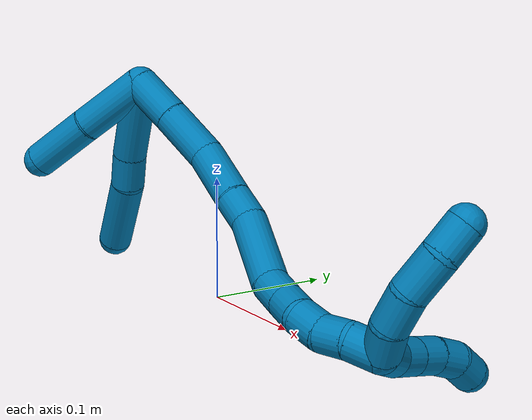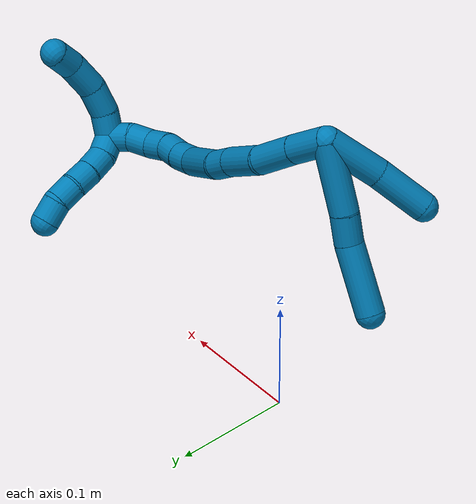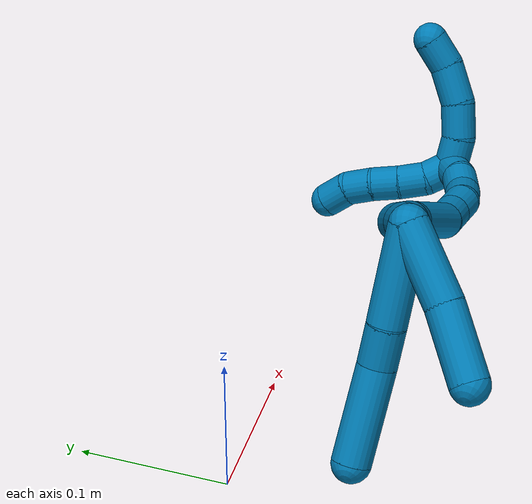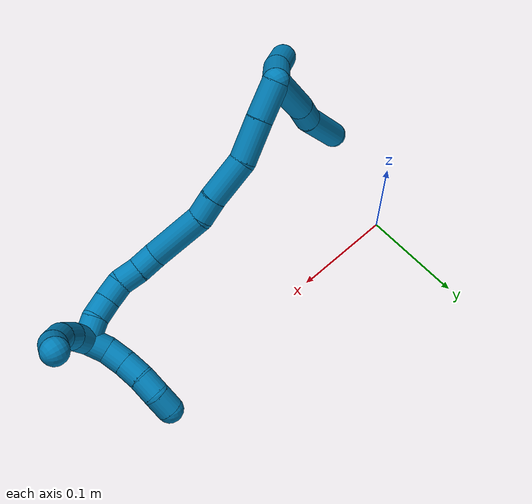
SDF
<sdf version="1.7">
 <world name="default">
  <model name="9">
   <static>0</static>
   <link name="9">
    <collision name="collision-cylinder-e_1_2_8">
     <pose>0.007631 0.022655 -0.019933 -2.29237 0.247701 -0.537372</pose>
     <geometry><cylinder><radius>0.0125</radius><length>0.062251</length></cylinder></geometry>
     <surface>
      <friction><ode><mu>1.16</mu><mu2>1.16</mu2><slip1>0</slip1><slip2>0</slip2></ode></friction>
      <contact><ode><kp>1e+06</kp><kd>1</kd><max_vel>0</max_vel><min_depth>0.001</min_depth></ode></contact>
     </surface>
    </collision>
    <visual name="visual-cylinder-e_1_2_8">
     <pose>0.007631 0.022655 -0.019933 -2.29237 0.247701 -0.537372</pose>
     <geometry><cylinder><radius>0.0125</radius><length>0.062251</length></cylinder></geometry>
     <material><ambient>0 0.490196 0.709804 1</ambient></material>
    </visual>
    <collision name="collision-cylinder-e_2_8_9">
     <pose>0.018427 0.055767 -0.047268 -2.18676 0.242155 -0.461988</pose>
     <geometry><cylinder><radius>0.0125</radius><length>0.026395</length></cylinder></geometry>
     <surface>
      <friction><ode><mu>1.16</mu><mu2>1.16</mu2><slip1>0</slip1><slip2>0</slip2></ode></friction>
      <contact><ode><kp>1e+06</kp><kd>1</kd><max_vel>0</max_vel><min_depth>0.001</min_depth></ode></contact>
     </surface>
    </collision>
    <visual name="visual-cylinder-e_2_8_9">
     <pose>0.018427 0.055767 -0.047268 -2.18676 0.242155 -0.461988</pose>
     <geometry><cylinder><radius>0.0125</radius><length>0.026395</length></cylinder></geometry>
     <material><ambient>0 0.490196 0.709804 1</ambient></material>
    </visual>
    <collision name="collision-cylinder-e_3_9_6">
     <pose>0.027656 0.086286 -0.077072 -2.41126 0.199005 -0.510847</pose>
     <geometry><cylinder><radius>0.0125</radius><length>0.061354</length></cylinder></geometry>
     <surface>
      <friction><ode><mu>1.16</mu><mu2>1.16</mu2><slip1>0</slip1><slip2>0</slip2></ode></friction>
      <contact><ode><kp>1e+06</kp><kd>1</kd><max_vel>0</max_vel><min_depth>0.001</min_depth></ode></contact>
     </surface>
    </collision>
    <visual name="visual-cylinder-e_3_9_6">
     <pose>0.027656 0.086286 -0.077072 -2.41126 0.199005 -0.510847</pose>
     <geometry><cylinder><radius>0.0125</radius><length>0.061354</length></cylinder></geometry>
     <material><ambient>0 0.490196 0.709804 1</ambient></material>
    </visual>
    <collision name="collision-cylinder-e_1_2_10">
     <pose>0.018828 0.005016 -0.017168 -2.85736 0.811062 -2.49821</pose>
     <geometry><cylinder><radius>0.0125</radius><length>0.051938</length></cylinder></geometry>
     <surface>
      <friction><ode><mu>1.16</mu><mu2>1.16</mu2><slip1>0</slip1><slip2>0</slip2></ode></friction>
      <contact><ode><kp>1e+06</kp><kd>1</kd><max_vel>0</max_vel><min_depth>0.001</min_depth></ode></contact>
     </surface>
    </collision>
    <visual name="visual-cylinder-e_1_2_10">
     <pose>0.018828 0.005016 -0.017168 -2.85736 0.811062 -2.49821</pose>
     <geometry><cylinder><radius>0.0125</radius><length>0.051938</length></cylinder></geometry>
     <material><ambient>0 0.490196 0.709804 1</ambient></material>
    </visual>
    <collision name="collision-cylinder-e_2_10_5">
     <pose>0.052967 0.014989 -0.052182 -2.87061 0.690772 -2.41724</pose>
     <geometry><cylinder><radius>0.0125</radius><length>0.048062</length></cylinder></geometry>
     <surface>
      <friction><ode><mu>1.16</mu><mu2>1.16</mu2><slip1>0</slip1><slip2>0</slip2></ode></friction>
      <contact><ode><kp>1e+06</kp><kd>1</kd><max_vel>0</max_vel><min_depth>0.001</min_depth></ode></contact>
     </surface>
    </collision>
    <visual name="visual-cylinder-e_2_10_5">
     <pose>0.052967 0.014989 -0.052182 -2.87061 0.690772 -2.41724</pose>
     <geometry><cylinder><radius>0.0125</radius><length>0.048062</length></cylinder></geometry>
     <material><ambient>0 0.490196 0.709804 1</ambient></material>
    </visual>
    <collision name="collision-cylinder-e_1_2_11">
     <pose>0.000357 0.014367 0.011093 -0.913296 0.019659 -0.009658</pose>
     <geometry><cylinder><radius>0.0125</radius><length>0.036308</length></cylinder></geometry>
     <surface>
      <friction><ode><mu>1.16</mu><mu2>1.16</mu2><slip1>0</slip1><slip2>0</slip2></ode></friction>
      <contact><ode><kp>1e+06</kp><kd>1</kd><max_vel>0</max_vel><min_depth>0.001</min_depth></ode></contact>
     </surface>
    </collision>
    <visual name="visual-cylinder-e_1_2_11">
     <pose>0.000357 0.014367 0.011093 -0.913296 0.019659 -0.009658</pose>
     <geometry><cylinder><radius>0.0125</radius><length>0.036308</length></cylinder></geometry>
     <material><ambient>0 0.490196 0.709804 1</ambient></material>
    </visual>
    <collision name="collision-cylinder-e_2_11_12">
     <pose>0.001107 0.045063 0.033897 -0.948614 0.01957 -0.010047</pose>
     <geometry><cylinder><radius>0.0125</radius><length>0.0402</length></cylinder></geometry>
     <surface>
      <friction><ode><mu>1.16</mu><mu2>1.16</mu2><slip1>0</slip1><slip2>0</slip2></ode></friction>
      <contact><ode><kp>1e+06</kp><kd>1</kd><max_vel>0</max_vel><min_depth>0.001</min_depth></ode></contact>
     </surface>
    </collision>
    <visual name="visual-cylinder-e_2_11_12">
     <pose>0.001107 0.045063 0.033897 -0.948614 0.01957 -0.010047</pose>
     <geometry><cylinder><radius>0.0125</radius><length>0.0402</length></cylinder></geometry>
     <material><ambient>0 0.490196 0.709804 1</ambient></material>
    </visual>
    <collision name="collision-cylinder-e_3_12_13">
     <pose>0.007036 0.07604 0.06018 -0.78799 0.261804 -0.109357</pose>
     <geometry><cylinder><radius>0.0125</radius><length>0.042778</length></cylinder></geometry>
     <surface>
      <friction><ode><mu>1.16</mu><mu2>1.16</mu2><slip1>0</slip1><slip2>0</slip2></ode></friction>
      <contact><ode><kp>1e+06</kp><kd>1</kd><max_vel>0</max_vel><min_depth>0.001</min_depth></ode></contact>
     </surface>
    </collision>
    <visual name="visual-cylinder-e_3_12_13">
     <pose>0.007036 0.07604 0.06018 -0.78799 0.261804 -0.109357</pose>
     <geometry><cylinder><radius>0.0125</radius><length>0.042778</length></cylinder></geometry>
     <material><ambient>0 0.490196 0.709804 1</ambient></material>
    </visual>
    <collision name="collision-cylinder-e_4_13_14">
     <pose>0.014802 0.098905 0.081746 -0.86565 0.203729 -0.094389</pose>
     <geometry><cylinder><radius>0.0125</radius><length>0.022041</length></cylinder></geometry>
     <surface>
      <friction><ode><mu>1.16</mu><mu2>1.16</mu2><slip1>0</slip1><slip2>0</slip2></ode></friction>
      <contact><ode><kp>1e+06</kp><kd>1</kd><max_vel>0</max_vel><min_depth>0.001</min_depth></ode></contact>
     </surface>
    </collision>
    <visual name="visual-cylinder-e_4_13_14">
     <pose>0.014802 0.098905 0.081746 -0.86565 0.203729 -0.094389</pose>
     <geometry><cylinder><radius>0.0125</radius><length>0.022041</length></cylinder></geometry>
     <material><ambient>0 0.490196 0.709804 1</ambient></material>
    </visual>
    <collision name="collision-cylinder-e_5_14_15">
     <pose>0.02979 0.123677 0.107496 -0.723142 0.471637 -0.181256</pose>
     <geometry><cylinder><radius>0.0125</radius><length>0.056161</length></cylinder></geometry>
     <surface>
      <friction><ode><mu>1.16</mu><mu2>1.16</mu2><slip1>0</slip1><slip2>0</slip2></ode></friction>
      <contact><ode><kp>1e+06</kp><kd>1</kd><max_vel>0</max_vel><min_depth>0.001</min_depth></ode></contact>
     </surface>
    </collision>
    <visual name="visual-cylinder-e_5_14_15">
     <pose>0.02979 0.123677 0.107496 -0.723142 0.471637 -0.181256</pose>
     <geometry><cylinder><radius>0.0125</radius><length>0.056161</length></cylinder></geometry>
     <material><ambient>0 0.490196 0.709804 1</ambient></material>
    </visual>
    <collision name="collision-cylinder-e_6_15_16">
     <pose>0.044889 0.145113 0.135115 -0.50344 0.227274 -0.058685</pose>
     <geometry><cylinder><radius>0.0125</radius><length>0.020776</length></cylinder></geometry>
     <surface>
      <friction><ode><mu>1.16</mu><mu2>1.16</mu2><slip1>0</slip1><slip2>0</slip2></ode></friction>
      <contact><ode><kp>1e+06</kp><kd>1</kd><max_vel>0</max_vel><min_depth>0.001</min_depth></ode></contact>
     </surface>
    </collision>
    <visual name="visual-cylinder-e_6_15_16">
     <pose>0.044889 0.145113 0.135115 -0.50344 0.227274 -0.058685</pose>
     <geometry><cylinder><radius>0.0125</radius><length>0.020776</length></cylinder></geometry>
     <material><ambient>0 0.490196 0.709804 1</ambient></material>
    </visual>
    <collision name="collision-cylinder-e_7_16_17">
     <pose>0.049873 0.153481 0.153149 -0.363183 0.263251 -0.048608</pose>
     <geometry><cylinder><radius>0.0125</radius><length>0.020318</length></cylinder></geometry>
     <surface>
      <friction><ode><mu>1.16</mu><mu2>1.16</mu2><slip1>0</slip1><slip2>0</slip2></ode></friction>
      <contact><ode><kp>1e+06</kp><kd>1</kd><max_vel>0</max_vel><min_depth>0.001</min_depth></ode></contact>
     </surface>
    </collision>
    <visual name="visual-cylinder-e_7_16_17">
     <pose>0.049873 0.153481 0.153149 -0.363183 0.263251 -0.048608</pose>
     <geometry><cylinder><radius>0.0125</radius><length>0.020318</length></cylinder></geometry>
     <material><ambient>0 0.490196 0.709804 1</ambient></material>
    </visual>
    <collision name="collision-cylinder-e_8_17_18">
     <pose>0.052614 0.162498 0.170687 -0.584151 0.009772 -0.002938</pose>
     <geometry><cylinder><radius>0.0125</radius><length>0.020067</length></cylinder></geometry>
     <surface>
      <friction><ode><mu>1.16</mu><mu2>1.16</mu2><slip1>0</slip1><slip2>0</slip2></ode></friction>
      <contact><ode><kp>1e+06</kp><kd>1</kd><max_vel>0</max_vel><min_depth>0.001</min_depth></ode></contact>
     </surface>
    </collision>
    <visual name="visual-cylinder-e_8_17_18">
     <pose>0.052614 0.162498 0.170687 -0.584151 0.009772 -0.002938</pose>
     <geometry><cylinder><radius>0.0125</radius><length>0.020067</length></cylinder></geometry>
     <material><ambient>0 0.490196 0.709804 1</ambient></material>
    </visual>
    <collision name="collision-cylinder-e_9_18_19">
     <pose>0.050234 0.1717 0.188052 -0.387242 -0.249769 0.04922</pose>
     <geometry><cylinder><radius>0.0125</radius><length>0.020052</length></cylinder></geometry>
     <surface>
      <friction><ode><mu>1.16</mu><mu2>1.16</mu2><slip1>0</slip1><slip2>0</slip2></ode></friction>
      <contact><ode><kp>1e+06</kp><kd>1</kd><max_vel>0</max_vel><min_depth>0.001</min_depth></ode></contact>
     </surface>
    </collision>
    <visual name="visual-cylinder-e_9_18_19">
     <pose>0.050234 0.1717 0.188052 -0.387242 -0.249769 0.04922</pose>
     <geometry><cylinder><radius>0.0125</radius><length>0.020052</length></cylinder></geometry>
     <material><ambient>0 0.490196 0.709804 1</ambient></material>
    </visual>
    <collision name="collision-cylinder-e_10_19_1">
     <pose>0.04447 0.181728 0.204934 -0.678539 -0.313633 0.111487</pose>
     <geometry><cylinder><radius>0.0125</radius><length>0.021301</length></cylinder></geometry>
     <surface>
      <friction><ode><mu>1.16</mu><mu2>1.16</mu2><slip1>0</slip1><slip2>0</slip2></ode></friction>
      <contact><ode><kp>1e+06</kp><kd>1</kd><max_vel>0</max_vel><min_depth>0.001</min_depth></ode></contact>
     </surface>
    </collision>
    <visual name="visual-cylinder-e_10_19_1">
     <pose>0.04447 0.181728 0.204934 -0.678539 -0.313633 0.111487</pose>
     <geometry><cylinder><radius>0.0125</radius><length>0.021301</length></cylinder></geometry>
     <material><ambient>0 0.490196 0.709804 1</ambient></material>
    </visual>
    <collision name="collision-cylinder-e_1_1_20">
     <pose>0.038862 0.179526 0.220172 0.861295 -0.202939 -0.093484</pose>
     <geometry><cylinder><radius>0.0125</radius><length>0.02304</length></cylinder></geometry>
     <surface>
      <friction><ode><mu>1.16</mu><mu2>1.16</mu2><slip1>0</slip1><slip2>0</slip2></ode></friction>
      <contact><ode><kp>1e+06</kp><kd>1</kd><max_vel>0</max_vel><min_depth>0.001</min_depth></ode></contact>
     </surface>
    </collision>
    <visual name="visual-cylinder-e_1_1_20">
     <pose>0.038862 0.179526 0.220172 0.861295 -0.202939 -0.093484</pose>
     <geometry><cylinder><radius>0.0125</radius><length>0.02304</length></cylinder></geometry>
     <material><ambient>0 0.490196 0.709804 1</ambient></material>
    </visual>
    <collision name="collision-cylinder-e_2_20_21">
     <pose>0.030621 0.162993 0.235476 0.786577 -0.483937 -0.204088</pose>
     <geometry><cylinder><radius>0.0125</radius><length>0.025444</length></cylinder></geometry>
     <surface>
      <friction><ode><mu>1.16</mu><mu2>1.16</mu2><slip1>0</slip1><slip2>0</slip2></ode></friction>
      <contact><ode><kp>1e+06</kp><kd>1</kd><max_vel>0</max_vel><min_depth>0.001</min_depth></ode></contact>
     </surface>
    </collision>
    <visual name="visual-cylinder-e_2_20_21">
     <pose>0.030621 0.162993 0.235476 0.786577 -0.483937 -0.204088</pose>
     <geometry><cylinder><radius>0.0125</radius><length>0.025444</length></cylinder></geometry>
     <material><ambient>0 0.490196 0.709804 1</ambient></material>
    </visual>
    <collision name="collision-cylinder-e_3_21_22">
     <pose>0.01481 0.148275 0.25151 0.695632 -0.754383 -0.285309</pose>
     <geometry><cylinder><radius>0.0125</radius><length>0.02889</length></cylinder></geometry>
     <surface>
      <friction><ode><mu>1.16</mu><mu2>1.16</mu2><slip1>0</slip1><slip2>0</slip2></ode></friction>
      <contact><ode><kp>1e+06</kp><kd>1</kd><max_vel>0</max_vel><min_depth>0.001</min_depth></ode></contact>
     </surface>
    </collision>
    <visual name="visual-cylinder-e_3_21_22">
     <pose>0.01481 0.148275 0.25151 0.695632 -0.754383 -0.285309</pose>
     <geometry><cylinder><radius>0.0125</radius><length>0.02889</length></cylinder></geometry>
     <material><ambient>0 0.490196 0.709804 1</ambient></material>
    </visual>
    <collision name="collision-cylinder-e_4_22_4">
     <pose>-0.004684 0.136932 0.26342 0.876117 -1.01348 -0.508752</pose>
     <geometry><cylinder><radius>0.0125</radius><length>0.022626</length></cylinder></geometry>
     <surface>
      <friction><ode><mu>1.16</mu><mu2>1.16</mu2><slip1>0</slip1><slip2>0</slip2></ode></friction>
      <contact><ode><kp>1e+06</kp><kd>1</kd><max_vel>0</max_vel><min_depth>0.001</min_depth></ode></contact>
     </surface>
    </collision>
    <visual name="visual-cylinder-e_4_22_4">
     <pose>-0.004684 0.136932 0.26342 0.876117 -1.01348 -0.508752</pose>
     <geometry><cylinder><radius>0.0125</radius><length>0.022626</length></cylinder></geometry>
     <material><ambient>0 0.490196 0.709804 1</ambient></material>
    </visual>
    <collision name="collision-cylinder-e_1_1_23">
     <pose>0.034931 0.193512 0.207212 -2.37278 -0.675516 1.42993</pose>
     <geometry><cylinder><radius>0.0125</radius><length>0.02</length></cylinder></geometry>
     <surface>
      <friction><ode><mu>1.16</mu><mu2>1.16</mu2><slip1>0</slip1><slip2>0</slip2></ode></friction>
      <contact><ode><kp>1e+06</kp><kd>1</kd><max_vel>0</max_vel><min_depth>0.001</min_depth></ode></contact>
     </surface>
    </collision>
    <visual name="visual-cylinder-e_1_1_23">
     <pose>0.034931 0.193512 0.207212 -2.37278 -0.675516 1.42993</pose>
     <geometry><cylinder><radius>0.0125</radius><length>0.02</length></cylinder></geometry>
     <material><ambient>0 0.490196 0.709804 1</ambient></material>
    </visual>
    <collision name="collision-cylinder-e_2_23_24">
     <pose>0.020576 0.203904 0.198491 -2.1306 -0.94455 1.49073</pose>
     <geometry><cylinder><radius>0.0125</radius><length>0.02</length></cylinder></geometry>
     <surface>
      <friction><ode><mu>1.16</mu><mu2>1.16</mu2><slip1>0</slip1><slip2>0</slip2></ode></friction>
      <contact><ode><kp>1e+06</kp><kd>1</kd><max_vel>0</max_vel><min_depth>0.001</min_depth></ode></contact>
     </surface>
    </collision>
    <visual name="visual-cylinder-e_2_23_24">
     <pose>0.020576 0.203904 0.198491 -2.1306 -0.94455 1.49073</pose>
     <geometry><cylinder><radius>0.0125</radius><length>0.02</length></cylinder></geometry>
     <material><ambient>0 0.490196 0.709804 1</ambient></material>
    </visual>
    <collision name="collision-cylinder-e_3_24_25">
     <pose>0.004117 0.213924 0.193226 -1.97359 -0.989315 1.369</pose>
     <geometry><cylinder><radius>0.0125</radius><length>0.02</length></cylinder></geometry>
     <surface>
      <friction><ode><mu>1.16</mu><mu2>1.16</mu2><slip1>0</slip1><slip2>0</slip2></ode></friction>
      <contact><ode><kp>1e+06</kp><kd>1</kd><max_vel>0</max_vel><min_depth>0.001</min_depth></ode></contact>
     </surface>
    </collision>
    <visual name="visual-cylinder-e_3_24_25">
     <pose>0.004117 0.213924 0.193226 -1.97359 -0.989315 1.369</pose>
     <geometry><cylinder><radius>0.0125</radius><length>0.02</length></cylinder></geometry>
     <material><ambient>0 0.490196 0.709804 1</ambient></material>
    </visual>
    <collision name="collision-cylinder-e_4_25_26">
     <pose>-0.011684 0.225433 0.189371 -1.82854 -0.839758 1.05021</pose>
     <geometry><cylinder><radius>0.0125</radius><length>0.02</length></cylinder></geometry>
     <surface>
      <friction><ode><mu>1.16</mu><mu2>1.16</mu2><slip1>0</slip1><slip2>0</slip2></ode></friction>
      <contact><ode><kp>1e+06</kp><kd>1</kd><max_vel>0</max_vel><min_depth>0.001</min_depth></ode></contact>
     </surface>
    </collision>
    <visual name="visual-cylinder-e_4_25_26">
     <pose>-0.011684 0.225433 0.189371 -1.82854 -0.839758 1.05021</pose>
     <geometry><cylinder><radius>0.0125</radius><length>0.02</length></cylinder></geometry>
     <material><ambient>0 0.490196 0.709804 1</ambient></material>
    </visual>
    <collision name="collision-cylinder-e_5_26_3">
     <pose>-0.02391 0.240181 0.184776 -1.90651 -0.498492 0.68828</pose>
     <geometry><cylinder><radius>0.0125</radius><length>0.02</length></cylinder></geometry>
     <surface>
      <friction><ode><mu>1.16</mu><mu2>1.16</mu2><slip1>0</slip1><slip2>0</slip2></ode></friction>
      <contact><ode><kp>1e+06</kp><kd>1</kd><max_vel>0</max_vel><min_depth>0.001</min_depth></ode></contact>
     </surface>
    </collision>
    <visual name="visual-cylinder-e_5_26_3">
     <pose>-0.02391 0.240181 0.184776 -1.90651 -0.498492 0.68828</pose>
     <geometry><cylinder><radius>0.0125</radius><length>0.02</length></cylinder></geometry>
     <material><ambient>0 0.490196 0.709804 1</ambient></material>
    </visual>
    <collision name="collision-sphere-3">
     <pose>-0.028691 0.248474 0.181882 0 -0 0</pose>
     <geometry><sphere><radius>0.0125</radius></sphere></geometry>
     <surface>
      <friction><ode><mu>1.16</mu><mu2>1.16</mu2><slip1>0</slip1><slip2>0</slip2></ode></friction>
      <contact><ode><kp>1e+06</kp><kd>1</kd><max_vel>0</max_vel><min_depth>0.001</min_depth></ode></contact>
     </surface>
    </collision>
    <visual name="visual-sphere-3">
     <pose>-0.028691 0.248474 0.181882 0 -0 0</pose>
     <geometry><sphere><radius>0.0125</radius></sphere></geometry>
     <material><ambient>0 0.490196 0.709804 1</ambient></material>
    </visual>
    <collision name="collision-sphere-26">
     <pose>-0.019129 0.231889 0.187669 0 -0 0</pose>
     <geometry><sphere><radius>0.0125</radius></sphere></geometry>
     <surface>
      <friction><ode><mu>1.16</mu><mu2>1.16</mu2><slip1>0</slip1><slip2>0</slip2></ode></friction>
      <contact><ode><kp>1e+06</kp><kd>1</kd><max_vel>0</max_vel><min_depth>0.001</min_depth></ode></contact>
     </surface>
    </collision>
    <visual name="visual-sphere-26">
     <pose>-0.019129 0.231889 0.187669 0 -0 0</pose>
     <geometry><sphere><radius>0.0125</radius></sphere></geometry>
     <material><ambient>0 0.490196 0.709804 1</ambient></material>
    </visual>
    <collision name="collision-sphere-25">
     <pose>-0.004239 0.218977 0.191073 0 -0 0</pose>
     <geometry><sphere><radius>0.0125</radius></sphere></geometry>
     <surface>
      <friction><ode><mu>1.16</mu><mu2>1.16</mu2><slip1>0</slip1><slip2>0</slip2></ode></friction>
      <contact><ode><kp>1e+06</kp><kd>1</kd><max_vel>0</max_vel><min_depth>0.001</min_depth></ode></contact>
     </surface>
    </collision>
    <visual name="visual-sphere-25">
     <pose>-0.004239 0.218977 0.191073 0 -0 0</pose>
     <geometry><sphere><radius>0.0125</radius></sphere></geometry>
     <material><ambient>0 0.490196 0.709804 1</ambient></material>
    </visual>
    <collision name="collision-sphere-24">
     <pose>0.012474 0.208871 0.195379 0 -0 0</pose>
     <geometry><sphere><radius>0.0125</radius></sphere></geometry>
     <surface>
      <friction><ode><mu>1.16</mu><mu2>1.16</mu2><slip1>0</slip1><slip2>0</slip2></ode></friction>
      <contact><ode><kp>1e+06</kp><kd>1</kd><max_vel>0</max_vel><min_depth>0.001</min_depth></ode></contact>
     </surface>
    </collision>
    <visual name="visual-sphere-24">
     <pose>0.012474 0.208871 0.195379 0 -0 0</pose>
     <geometry><sphere><radius>0.0125</radius></sphere></geometry>
     <material><ambient>0 0.490196 0.709804 1</ambient></material>
    </visual>
    <collision name="collision-sphere-23">
     <pose>0.028678 0.198938 0.201603 0 -0 0</pose>
     <geometry><sphere><radius>0.0125</radius></sphere></geometry>
     <surface>
      <friction><ode><mu>1.16</mu><mu2>1.16</mu2><slip1>0</slip1><slip2>0</slip2></ode></friction>
      <contact><ode><kp>1e+06</kp><kd>1</kd><max_vel>0</max_vel><min_depth>0.001</min_depth></ode></contact>
     </surface>
    </collision>
    <visual name="visual-sphere-23">
     <pose>0.028678 0.198938 0.201603 0 -0 0</pose>
     <geometry><sphere><radius>0.0125</radius></sphere></geometry>
     <material><ambient>0 0.490196 0.709804 1</ambient></material>
    </visual>
    <collision name="collision-sphere-4">
     <pose>-0.014285 0.132335 0.267251 0 -0 0</pose>
     <geometry><sphere><radius>0.0125</radius></sphere></geometry>
     <surface>
      <friction><ode><mu>1.16</mu><mu2>1.16</mu2><slip1>0</slip1><slip2>0</slip2></ode></friction>
      <contact><ode><kp>1e+06</kp><kd>1</kd><max_vel>0</max_vel><min_depth>0.001</min_depth></ode></contact>
     </surface>
    </collision>
    <visual name="visual-sphere-4">
     <pose>-0.014285 0.132335 0.267251 0 -0 0</pose>
     <geometry><sphere><radius>0.0125</radius></sphere></geometry>
     <material><ambient>0 0.490196 0.709804 1</ambient></material>
    </visual>
    <collision name="collision-sphere-22">
     <pose>0.004917 0.141529 0.25959 0 -0 0</pose>
     <geometry><sphere><radius>0.0125</radius></sphere></geometry>
     <surface>
      <friction><ode><mu>1.16</mu><mu2>1.16</mu2><slip1>0</slip1><slip2>0</slip2></ode></friction>
      <contact><ode><kp>1e+06</kp><kd>1</kd><max_vel>0</max_vel><min_depth>0.001</min_depth></ode></contact>
     </surface>
    </collision>
    <visual name="visual-sphere-22">
     <pose>0.004917 0.141529 0.25959 0 -0 0</pose>
     <geometry><sphere><radius>0.0125</radius></sphere></geometry>
     <material><ambient>0 0.490196 0.709804 1</ambient></material>
    </visual>
    <collision name="collision-sphere-21">
     <pose>0.024702 0.15502 0.24343 0 -0 0</pose>
     <geometry><sphere><radius>0.0125</radius></sphere></geometry>
     <surface>
      <friction><ode><mu>1.16</mu><mu2>1.16</mu2><slip1>0</slip1><slip2>0</slip2></ode></friction>
      <contact><ode><kp>1e+06</kp><kd>1</kd><max_vel>0</max_vel><min_depth>0.001</min_depth></ode></contact>
     </surface>
    </collision>
    <visual name="visual-sphere-21">
     <pose>0.024702 0.15502 0.24343 0 -0 0</pose>
     <geometry><sphere><radius>0.0125</radius></sphere></geometry>
     <material><ambient>0 0.490196 0.709804 1</ambient></material>
    </visual>
    <collision name="collision-sphere-20">
     <pose>0.036541 0.170965 0.227523 0 -0 0</pose>
     <geometry><sphere><radius>0.0125</radius></sphere></geometry>
     <surface>
      <friction><ode><mu>1.16</mu><mu2>1.16</mu2><slip1>0</slip1><slip2>0</slip2></ode></friction>
      <contact><ode><kp>1e+06</kp><kd>1</kd><max_vel>0</max_vel><min_depth>0.001</min_depth></ode></contact>
     </surface>
    </collision>
    <visual name="visual-sphere-20">
     <pose>0.036541 0.170965 0.227523 0 -0 0</pose>
     <geometry><sphere><radius>0.0125</radius></sphere></geometry>
     <material><ambient>0 0.490196 0.709804 1</ambient></material>
    </visual>
    <collision name="collision-sphere-5">
     <pose>0.068278 0.019947 -0.070028 0 -0 0</pose>
     <geometry><sphere><radius>0.0125</radius></sphere></geometry>
     <surface>
      <friction><ode><mu>1.16</mu><mu2>1.16</mu2><slip1>0</slip1><slip2>0</slip2></ode></friction>
      <contact><ode><kp>1e+06</kp><kd>1</kd><max_vel>0</max_vel><min_depth>0.001</min_depth></ode></contact>
     </surface>
    </collision>
    <visual name="visual-sphere-5">
     <pose>0.068278 0.019947 -0.070028 0 -0 0</pose>
     <geometry><sphere><radius>0.0125</radius></sphere></geometry>
     <material><ambient>0 0.490196 0.709804 1</ambient></material>
    </visual>
    <collision name="collision-sphere-10">
     <pose>0.037656 0.010031 -0.034336 0 -0 0</pose>
     <geometry><sphere><radius>0.0125</radius></sphere></geometry>
     <surface>
      <friction><ode><mu>1.16</mu><mu2>1.16</mu2><slip1>0</slip1><slip2>0</slip2></ode></friction>
      <contact><ode><kp>1e+06</kp><kd>1</kd><max_vel>0</max_vel><min_depth>0.001</min_depth></ode></contact>
     </surface>
    </collision>
    <visual name="visual-sphere-10">
     <pose>0.037656 0.010031 -0.034336 0 -0 0</pose>
     <geometry><sphere><radius>0.0125</radius></sphere></geometry>
     <material><ambient>0 0.490196 0.709804 1</ambient></material>
    </visual>
    <collision name="collision-sphere-6">
     <pose>0.033721 0.106348 -0.099474 0 -0 0</pose>
     <geometry><sphere><radius>0.0125</radius></sphere></geometry>
     <surface>
      <friction><ode><mu>1.16</mu><mu2>1.16</mu2><slip1>0</slip1><slip2>0</slip2></ode></friction>
      <contact><ode><kp>1e+06</kp><kd>1</kd><max_vel>0</max_vel><min_depth>0.001</min_depth></ode></contact>
     </surface>
    </collision>
    <visual name="visual-sphere-6">
     <pose>0.033721 0.106348 -0.099474 0 -0 0</pose>
     <geometry><sphere><radius>0.0125</radius></sphere></geometry>
     <material><ambient>0 0.490196 0.709804 1</ambient></material>
    </visual>
    <collision name="collision-sphere-9">
     <pose>0.021592 0.066225 -0.05467 0 -0 0</pose>
     <geometry><sphere><radius>0.0125</radius></sphere></geometry>
     <surface>
      <friction><ode><mu>1.16</mu><mu2>1.16</mu2><slip1>0</slip1><slip2>0</slip2></ode></friction>
      <contact><ode><kp>1e+06</kp><kd>1</kd><max_vel>0</max_vel><min_depth>0.001</min_depth></ode></contact>
     </surface>
    </collision>
    <visual name="visual-sphere-9">
     <pose>0.021592 0.066225 -0.05467 0 -0 0</pose>
     <geometry><sphere><radius>0.0125</radius></sphere></geometry>
     <material><ambient>0 0.490196 0.709804 1</ambient></material>
    </visual>
    <collision name="collision-sphere-2">
     <geometry><sphere><radius>0.0125</radius></sphere></geometry>
     <surface>
      <friction><ode><mu>1.16</mu><mu2>1.16</mu2><slip1>0</slip1><slip2>0</slip2></ode></friction>
      <contact><ode><kp>1e+06</kp><kd>1</kd><max_vel>0</max_vel><min_depth>0.001</min_depth></ode></contact>
     </surface>
    </collision>
    <visual name="visual-sphere-2">
     <geometry><sphere><radius>0.0125</radius></sphere></geometry>
     <material><ambient>0 0.490196 0.709804 1</ambient></material>
    </visual>
    <collision name="collision-sphere-19">
     <pose>0.047756 0.175369 0.197048 0 -0 0</pose>
     <geometry><sphere><radius>0.0125</radius></sphere></geometry>
     <surface>
      <friction><ode><mu>1.16</mu><mu2>1.16</mu2><slip1>0</slip1><slip2>0</slip2></ode></friction>
      <contact><ode><kp>1e+06</kp><kd>1</kd><max_vel>0</max_vel><min_depth>0.001</min_depth></ode></contact>
     </surface>
    </collision>
    <visual name="visual-sphere-19">
     <pose>0.047756 0.175369 0.197048 0 -0 0</pose>
     <geometry><sphere><radius>0.0125</radius></sphere></geometry>
     <material><ambient>0 0.490196 0.709804 1</ambient></material>
    </visual>
    <collision name="collision-sphere-8">
     <pose>0.015262 0.04531 -0.039866 0 -0 0</pose>
     <geometry><sphere><radius>0.0125</radius></sphere></geometry>
     <surface>
      <friction><ode><mu>1.16</mu><mu2>1.16</mu2><slip1>0</slip1><slip2>0</slip2></ode></friction>
      <contact><ode><kp>1e+06</kp><kd>1</kd><max_vel>0</max_vel><min_depth>0.001</min_depth></ode></contact>
     </surface>
    </collision>
    <visual name="visual-sphere-8">
     <pose>0.015262 0.04531 -0.039866 0 -0 0</pose>
     <geometry><sphere><radius>0.0125</radius></sphere></geometry>
     <material><ambient>0 0.490196 0.709804 1</ambient></material>
    </visual>
    <collision name="collision-sphere-11">
     <pose>0.000714 0.028733 0.022185 0 -0 0</pose>
     <geometry><sphere><radius>0.0125</radius></sphere></geometry>
     <surface>
      <friction><ode><mu>1.16</mu><mu2>1.16</mu2><slip1>0</slip1><slip2>0</slip2></ode></friction>
      <contact><ode><kp>1e+06</kp><kd>1</kd><max_vel>0</max_vel><min_depth>0.001</min_depth></ode></contact>
     </surface>
    </collision>
    <visual name="visual-sphere-11">
     <pose>0.000714 0.028733 0.022185 0 -0 0</pose>
     <geometry><sphere><radius>0.0125</radius></sphere></geometry>
     <material><ambient>0 0.490196 0.709804 1</ambient></material>
    </visual>
    <collision name="collision-sphere-12">
     <pose>0.0015 0.061394 0.045609 0 -0 0</pose>
     <geometry><sphere><radius>0.0125</radius></sphere></geometry>
     <surface>
      <friction><ode><mu>1.16</mu><mu2>1.16</mu2><slip1>0</slip1><slip2>0</slip2></ode></friction>
      <contact><ode><kp>1e+06</kp><kd>1</kd><max_vel>0</max_vel><min_depth>0.001</min_depth></ode></contact>
     </surface>
    </collision>
    <visual name="visual-sphere-12">
     <pose>0.0015 0.061394 0.045609 0 -0 0</pose>
     <geometry><sphere><radius>0.0125</radius></sphere></geometry>
     <material><ambient>0 0.490196 0.709804 1</ambient></material>
    </visual>
    <collision name="collision-sphere-13">
     <pose>0.012572 0.090687 0.074751 0 -0 0</pose>
     <geometry><sphere><radius>0.0125</radius></sphere></geometry>
     <surface>
      <friction><ode><mu>1.16</mu><mu2>1.16</mu2><slip1>0</slip1><slip2>0</slip2></ode></friction>
      <contact><ode><kp>1e+06</kp><kd>1</kd><max_vel>0</max_vel><min_depth>0.001</min_depth></ode></contact>
     </surface>
    </collision>
    <visual name="visual-sphere-13">
     <pose>0.012572 0.090687 0.074751 0 -0 0</pose>
     <geometry><sphere><radius>0.0125</radius></sphere></geometry>
     <material><ambient>0 0.490196 0.709804 1</ambient></material>
    </visual>
    <collision name="collision-sphere-14">
     <pose>0.017032 0.107124 0.088741 0 -0 0</pose>
     <geometry><sphere><radius>0.0125</radius></sphere></geometry>
     <surface>
      <friction><ode><mu>1.16</mu><mu2>1.16</mu2><slip1>0</slip1><slip2>0</slip2></ode></friction>
      <contact><ode><kp>1e+06</kp><kd>1</kd><max_vel>0</max_vel><min_depth>0.001</min_depth></ode></contact>
     </surface>
    </collision>
    <visual name="visual-sphere-14">
     <pose>0.017032 0.107124 0.088741 0 -0 0</pose>
     <geometry><sphere><radius>0.0125</radius></sphere></geometry>
     <material><ambient>0 0.490196 0.709804 1</ambient></material>
    </visual>
    <collision name="collision-sphere-15">
     <pose>0.042548 0.140231 0.12625 0 -0 0</pose>
     <geometry><sphere><radius>0.0125</radius></sphere></geometry>
     <surface>
      <friction><ode><mu>1.16</mu><mu2>1.16</mu2><slip1>0</slip1><slip2>0</slip2></ode></friction>
      <contact><ode><kp>1e+06</kp><kd>1</kd><max_vel>0</max_vel><min_depth>0.001</min_depth></ode></contact>
     </surface>
    </collision>
    <visual name="visual-sphere-15">
     <pose>0.042548 0.140231 0.12625 0 -0 0</pose>
     <geometry><sphere><radius>0.0125</radius></sphere></geometry>
     <material><ambient>0 0.490196 0.709804 1</ambient></material>
    </visual>
    <collision name="collision-sphere-16">
     <pose>0.047229 0.149996 0.14398 0 -0 0</pose>
     <geometry><sphere><radius>0.0125</radius></sphere></geometry>
     <surface>
      <friction><ode><mu>1.16</mu><mu2>1.16</mu2><slip1>0</slip1><slip2>0</slip2></ode></friction>
      <contact><ode><kp>1e+06</kp><kd>1</kd><max_vel>0</max_vel><min_depth>0.001</min_depth></ode></contact>
     </surface>
    </collision>
    <visual name="visual-sphere-16">
     <pose>0.047229 0.149996 0.14398 0 -0 0</pose>
     <geometry><sphere><radius>0.0125</radius></sphere></geometry>
     <material><ambient>0 0.490196 0.709804 1</ambient></material>
    </visual>
    <collision name="collision-sphere-17">
     <pose>0.052516 0.156965 0.162318 0 -0 0</pose>
     <geometry><sphere><radius>0.0125</radius></sphere></geometry>
     <surface>
      <friction><ode><mu>1.16</mu><mu2>1.16</mu2><slip1>0</slip1><slip2>0</slip2></ode></friction>
      <contact><ode><kp>1e+06</kp><kd>1</kd><max_vel>0</max_vel><min_depth>0.001</min_depth></ode></contact>
     </surface>
    </collision>
    <visual name="visual-sphere-17">
     <pose>0.052516 0.156965 0.162318 0 -0 0</pose>
     <geometry><sphere><radius>0.0125</radius></sphere></geometry>
     <material><ambient>0 0.490196 0.709804 1</ambient></material>
    </visual>
    <collision name="collision-sphere-18">
     <pose>0.052712 0.168031 0.179056 0 -0 0</pose>
     <geometry><sphere><radius>0.0125</radius></sphere></geometry>
     <surface>
      <friction><ode><mu>1.16</mu><mu2>1.16</mu2><slip1>0</slip1><slip2>0</slip2></ode></friction>
      <contact><ode><kp>1e+06</kp><kd>1</kd><max_vel>0</max_vel><min_depth>0.001</min_depth></ode></contact>
     </surface>
    </collision>
    <visual name="visual-sphere-18">
     <pose>0.052712 0.168031 0.179056 0 -0 0</pose>
     <geometry><sphere><radius>0.0125</radius></sphere></geometry>
     <material><ambient>0 0.490196 0.709804 1</ambient></material>
    </visual>
    <collision name="collision-sphere-1">
     <pose>0.041184 0.188086 0.212821 0 -0 0</pose>
     <geometry><sphere><radius>0.0125</radius></sphere></geometry>
     <surface>
      <friction><ode><mu>1.16</mu><mu2>1.16</mu2><slip1>0</slip1><slip2>0</slip2></ode></friction>
      <contact><ode><kp>1e+06</kp><kd>1</kd><max_vel>0</max_vel><min_depth>0.001</min_depth></ode></contact>
     </surface>
    </collision>
    <visual name="visual-sphere-1">
     <pose>0.041184 0.188086 0.212821 0 -0 0</pose>
     <geometry><sphere><radius>0.0125</radius></sphere></geometry>
     <material><ambient>0 0.490196 0.709804 1</ambient></material>
    </visual>
    <inertial>
     <pose>0.021297 0.103708 0.083725 0 -0 0</pose>
     <mass>0.75</mass>
     <inertia><ixx>4.5e-05</ixx><ixy>0</ixy><ixz>0</ixz><iyy>3.2e-05</iyy><iyz>0</iyz><izz>-8.9e-05</izz></inertia>
    </inertial>
   </link>
   <pose>0.055188 -0.09679 0.189758 -1.31517 0.38189 -1.50915</pose>
  </model>
 </world>
</sdf>
